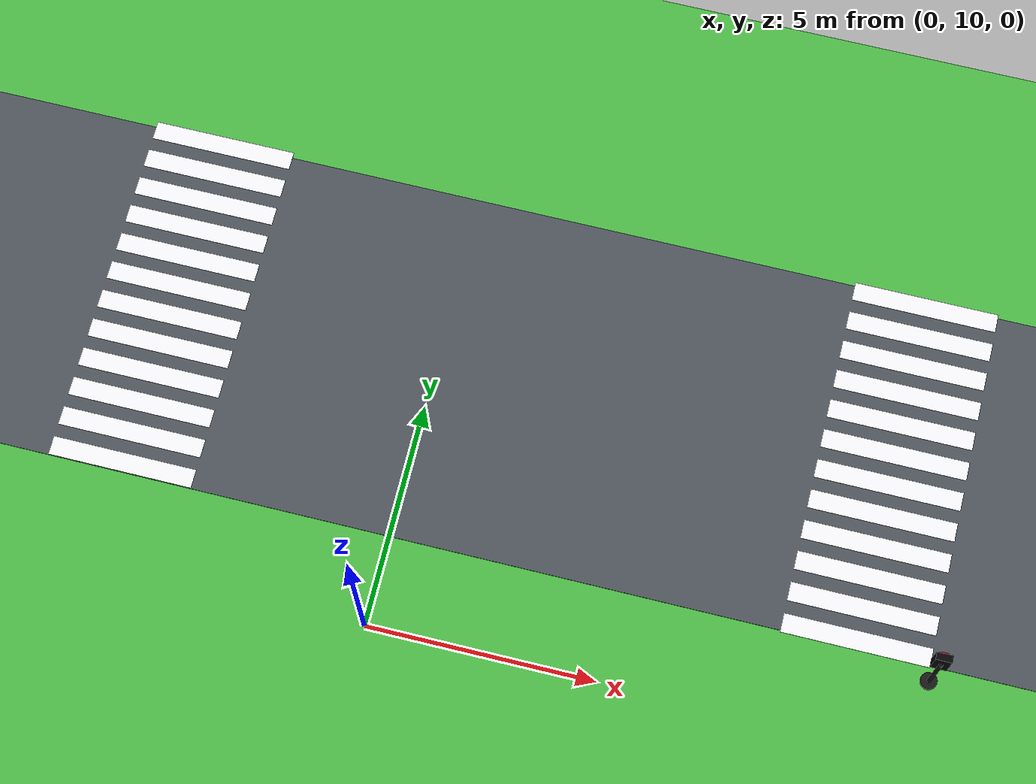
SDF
<sdf version="1.10">
 <world name="city_second">
  <model name="ground_plane">
   <static>true</static>
   <link name="link">
    <collision name="collision">
     <geometry><plane><normal>0 0 1</normal><size>300 300</size></plane></geometry>
    </collision>
    <visual name="visual">
     <geometry><plane><normal>0 0 1</normal><size>300 300</size></plane></geometry>
     <material>
      <ambient>0.280000001 0.689999998 0.25999999 1</ambient>
      <diffuse>0.280000001 0.689999998 0.25999999 1</diffuse>
      <specular>0.0299999993 0.0299999993 0.0299999993 1</specular>
     </material>
    </visual>
    <inertial>
     <mass>1</mass>
     <inertia><ixx>1</ixx><ixy>0</ixy><ixz>0</ixz><iyy>1</iyy><iyz>0</iyz><izz>1</izz></inertia>
    </inertial>
   </link>
  </model>
  <model name="road_h_2">
   <static>true</static>
   <pose>0 16 0.01 0 0 0</pose>
   <link name="link">
    <collision name="collision"><geometry><box><size>84 8 0.02</size></box></geometry></collision>
    <visual name="visual">
     <geometry><box><size>84 8 0.02</size></box></geometry>
     <material>
      <ambient>0.289999992 0.310000002 0.340000004 1</ambient>
      <diffuse>0.289999992 0.310000002 0.340000004 1</diffuse>
      <specular>0.0299999993 0.0299999993 0.0299999993 1</specular>
     </material>
    </visual>
    <inertial>
     <mass>1</mass>
     <inertia><ixx>1</ixx><ixy>0</ixy><ixz>0</ixz><iyy>1</iyy><iyz>0</iyz><izz>1</izz></inertia>
    </inertial>
   </link>
  </model>
  <model name="crosswalk_v_2_1_east_6">
   <static>true</static>
   <pose>10.091699999999999 16.024799999999999 0.017000000000000001 0 0 0</pose>
   <link name="stripe_1">
    <collision name="collision">
     <geometry><box><size>3.2000000000000002 0.41999999999999998 0.01</size></box></geometry>
    </collision>
    <visual name="visual">
     <geometry><box><size>3.2000000000000002 0.41999999999999998 0.01</size></box></geometry>
     <material>
      <ambient>0.920000017 0.920000017 0.930000007 1</ambient>
      <diffuse>0.920000017 0.920000017 0.930000007 1</diffuse>
      <specular>0.0299999993 0.0299999993 0.0299999993 1</specular>
     </material>
    </visual>
    <pose>0 -3.8500000000000001 0 0 0 0</pose>
    <inertial>
     <mass>1</mass>
     <inertia><ixx>1</ixx><ixy>0</ixy><ixz>0</ixz><iyy>1</iyy><iyz>0</iyz><izz>1</izz></inertia>
    </inertial>
   </link>
   <link name="stripe_2">
    <collision name="collision">
     <geometry><box><size>3.2000000000000002 0.41999999999999998 0.01</size></box></geometry>
    </collision>
    <visual name="visual">
     <geometry><box><size>3.2000000000000002 0.41999999999999998 0.01</size></box></geometry>
     <material>
      <ambient>0.920000017 0.920000017 0.930000007 1</ambient>
      <diffuse>0.920000017 0.920000017 0.930000007 1</diffuse>
      <specular>0.0299999993 0.0299999993 0.0299999993 1</specular>
     </material>
    </visual>
    <pose>0 -3.1499999999999999 0 0 0 0</pose>
    <inertial>
     <mass>1</mass>
     <inertia><ixx>1</ixx><ixy>0</ixy><ixz>0</ixz><iyy>1</iyy><iyz>0</iyz><izz>1</izz></inertia>
    </inertial>
   </link>
   <link name="stripe_3">
    <collision name="collision">
     <geometry><box><size>3.2000000000000002 0.41999999999999998 0.01</size></box></geometry>
    </collision>
    <visual name="visual">
     <geometry><box><size>3.2000000000000002 0.41999999999999998 0.01</size></box></geometry>
     <material>
      <ambient>0.920000017 0.920000017 0.930000007 1</ambient>
      <diffuse>0.920000017 0.920000017 0.930000007 1</diffuse>
      <specular>0.0299999993 0.0299999993 0.0299999993 1</specular>
     </material>
    </visual>
    <pose>0 -2.4500000000000002 0 0 0 0</pose>
    <inertial>
     <mass>1</mass>
     <inertia><ixx>1</ixx><ixy>0</ixy><ixz>0</ixz><iyy>1</iyy><iyz>0</iyz><izz>1</izz></inertia>
    </inertial>
   </link>
   <link name="stripe_4">
    <collision name="collision">
     <geometry><box><size>3.2000000000000002 0.41999999999999998 0.01</size></box></geometry>
    </collision>
    <visual name="visual">
     <geometry><box><size>3.2000000000000002 0.41999999999999998 0.01</size></box></geometry>
     <material>
      <ambient>0.920000017 0.920000017 0.930000007 1</ambient>
      <diffuse>0.920000017 0.920000017 0.930000007 1</diffuse>
      <specular>0.0299999993 0.0299999993 0.0299999993 1</specular>
     </material>
    </visual>
    <pose>0 -1.75 0 0 0 0</pose>
    <inertial>
     <mass>1</mass>
     <inertia><ixx>1</ixx><ixy>0</ixy><ixz>0</ixz><iyy>1</iyy><iyz>0</iyz><izz>1</izz></inertia>
    </inertial>
   </link>
   <link name="stripe_5">
    <collision name="collision">
     <geometry><box><size>3.2000000000000002 0.41999999999999998 0.01</size></box></geometry>
    </collision>
    <visual name="visual">
     <geometry><box><size>3.2000000000000002 0.41999999999999998 0.01</size></box></geometry>
     <material>
      <ambient>0.920000017 0.920000017 0.930000007 1</ambient>
      <diffuse>0.920000017 0.920000017 0.930000007 1</diffuse>
      <specular>0.0299999993 0.0299999993 0.0299999993 1</specular>
     </material>
    </visual>
    <pose>0 -1.05 0 0 0 0</pose>
    <inertial>
     <mass>1</mass>
     <inertia><ixx>1</ixx><ixy>0</ixy><ixz>0</ixz><iyy>1</iyy><iyz>0</iyz><izz>1</izz></inertia>
    </inertial>
   </link>
   <link name="stripe_6">
    <collision name="collision">
     <geometry><box><size>3.2000000000000002 0.41999999999999998 0.01</size></box></geometry>
    </collision>
    <visual name="visual">
     <geometry><box><size>3.2000000000000002 0.41999999999999998 0.01</size></box></geometry>
     <material>
      <ambient>0.920000017 0.920000017 0.930000007 1</ambient>
      <diffuse>0.920000017 0.920000017 0.930000007 1</diffuse>
      <specular>0.0299999993 0.0299999993 0.0299999993 1</specular>
     </material>
    </visual>
    <pose>0 -0.34999999999999998 0 0 0 0</pose>
    <inertial>
     <mass>1</mass>
     <inertia><ixx>1</ixx><ixy>0</ixy><ixz>0</ixz><iyy>1</iyy><iyz>0</iyz><izz>1</izz></inertia>
    </inertial>
   </link>
   <link name="stripe_7">
    <collision name="collision">
     <geometry><box><size>3.2000000000000002 0.41999999999999998 0.01</size></box></geometry>
    </collision>
    <visual name="visual">
     <geometry><box><size>3.2000000000000002 0.41999999999999998 0.01</size></box></geometry>
     <material>
      <ambient>0.920000017 0.920000017 0.930000007 1</ambient>
      <diffuse>0.920000017 0.920000017 0.930000007 1</diffuse>
      <specular>0.0299999993 0.0299999993 0.0299999993 1</specular>
     </material>
    </visual>
    <pose>0 0.34999999999999998 0 0 0 0</pose>
    <inertial>
     <mass>1</mass>
     <inertia><ixx>1</ixx><ixy>0</ixy><ixz>0</ixz><iyy>1</iyy><iyz>0</iyz><izz>1</izz></inertia>
    </inertial>
   </link>
   <link name="stripe_8">
    <collision name="collision">
     <geometry><box><size>3.2000000000000002 0.41999999999999998 0.01</size></box></geometry>
    </collision>
    <visual name="visual">
     <geometry><box><size>3.2000000000000002 0.41999999999999998 0.01</size></box></geometry>
     <material>
      <ambient>0.920000017 0.920000017 0.930000007 1</ambient>
      <diffuse>0.920000017 0.920000017 0.930000007 1</diffuse>
      <specular>0.0299999993 0.0299999993 0.0299999993 1</specular>
     </material>
    </visual>
    <pose>0 1.05 0 0 0 0</pose>
    <inertial>
     <mass>1</mass>
     <inertia><ixx>1</ixx><ixy>0</ixy><ixz>0</ixz><iyy>1</iyy><iyz>0</iyz><izz>1</izz></inertia>
    </inertial>
   </link>
   <link name="stripe_9">
    <collision name="collision">
     <geometry><box><size>3.2000000000000002 0.41999999999999998 0.01</size></box></geometry>
    </collision>
    <visual name="visual">
     <geometry><box><size>3.2000000000000002 0.41999999999999998 0.01</size></box></geometry>
     <material>
      <ambient>0.920000017 0.920000017 0.930000007 1</ambient>
      <diffuse>0.920000017 0.920000017 0.930000007 1</diffuse>
      <specular>0.0299999993 0.0299999993 0.0299999993 1</specular>
     </material>
    </visual>
    <pose>0 1.75 0 0 0 0</pose>
    <inertial>
     <mass>1</mass>
     <inertia><ixx>1</ixx><ixy>0</ixy><ixz>0</ixz><iyy>1</iyy><iyz>0</iyz><izz>1</izz></inertia>
    </inertial>
   </link>
   <link name="stripe_10">
    <collision name="collision">
     <geometry><box><size>3.2000000000000002 0.41999999999999998 0.01</size></box></geometry>
    </collision>
    <visual name="visual">
     <geometry><box><size>3.2000000000000002 0.41999999999999998 0.01</size></box></geometry>
     <material>
      <ambient>0.920000017 0.920000017 0.930000007 1</ambient>
      <diffuse>0.920000017 0.920000017 0.930000007 1</diffuse>
      <specular>0.0299999993 0.0299999993 0.0299999993 1</specular>
     </material>
    </visual>
    <pose>0 2.4500000000000002 0 0 0 0</pose>
    <inertial>
     <mass>1</mass>
     <inertia><ixx>1</ixx><ixy>0</ixy><ixz>0</ixz><iyy>1</iyy><iyz>0</iyz><izz>1</izz></inertia>
    </inertial>
   </link>
   <link name="stripe_11">
    <collision name="collision">
     <geometry><box><size>3.2000000000000002 0.41999999999999998 0.01</size></box></geometry>
    </collision>
    <visual name="visual">
     <geometry><box><size>3.2000000000000002 0.41999999999999998 0.01</size></box></geometry>
     <material>
      <ambient>0.920000017 0.920000017 0.930000007 1</ambient>
      <diffuse>0.920000017 0.920000017 0.930000007 1</diffuse>
      <specular>0.0299999993 0.0299999993 0.0299999993 1</specular>
     </material>
    </visual>
    <pose>0 3.1499999999999999 0 0 0 0</pose>
    <inertial>
     <mass>1</mass>
     <inertia><ixx>1</ixx><ixy>0</ixy><ixz>0</ixz><iyy>1</iyy><iyz>0</iyz><izz>1</izz></inertia>
    </inertial>
   </link>
   <link name="stripe_12">
    <collision name="collision">
     <geometry><box><size>3.2000000000000002 0.41999999999999998 0.01</size></box></geometry>
    </collision>
    <visual name="visual">
     <geometry><box><size>3.2000000000000002 0.41999999999999998 0.01</size></box></geometry>
     <material>
      <ambient>0.920000017 0.920000017 0.930000007 1</ambient>
      <diffuse>0.920000017 0.920000017 0.930000007 1</diffuse>
      <specular>0.0299999993 0.0299999993 0.0299999993 1</specular>
     </material>
    </visual>
    <pose>0 3.8500000000000001 0 0 0 0</pose>
    <inertial>
     <mass>1</mass>
     <inertia><ixx>1</ixx><ixy>0</ixy><ixz>0</ixz><iyy>1</iyy><iyz>0</iyz><izz>1</izz></inertia>
    </inertial>
   </link>
  </model>
  <model name="crosswalk_v_2_1_east_5_2">
   <static>true</static>
   <pose>-6.0115999999999996 16.072099999999999 0.017000000000000001 0 0 0</pose>
   <link name="stripe_1">
    <collision name="collision">
     <geometry><box><size>3.2000000000000002 0.41999999999999998 0.01</size></box></geometry>
    </collision>
    <visual name="visual">
     <geometry><box><size>3.2000000000000002 0.41999999999999998 0.01</size></box></geometry>
     <material>
      <ambient>0.920000017 0.920000017 0.930000007 1</ambient>
      <diffuse>0.920000017 0.920000017 0.930000007 1</diffuse>
      <specular>0.0299999993 0.0299999993 0.0299999993 1</specular>
     </material>
    </visual>
    <pose>0 -3.8500000000000001 0 0 0 0</pose>
    <inertial>
     <mass>1</mass>
     <inertia><ixx>1</ixx><ixy>0</ixy><ixz>0</ixz><iyy>1</iyy><iyz>0</iyz><izz>1</izz></inertia>
    </inertial>
   </link>
   <link name="stripe_2">
    <collision name="collision">
     <geometry><box><size>3.2000000000000002 0.41999999999999998 0.01</size></box></geometry>
    </collision>
    <visual name="visual">
     <geometry><box><size>3.2000000000000002 0.41999999999999998 0.01</size></box></geometry>
     <material>
      <ambient>0.920000017 0.920000017 0.930000007 1</ambient>
      <diffuse>0.920000017 0.920000017 0.930000007 1</diffuse>
      <specular>0.0299999993 0.0299999993 0.0299999993 1</specular>
     </material>
    </visual>
    <pose>0 -3.1499999999999999 0 0 0 0</pose>
    <inertial>
     <mass>1</mass>
     <inertia><ixx>1</ixx><ixy>0</ixy><ixz>0</ixz><iyy>1</iyy><iyz>0</iyz><izz>1</izz></inertia>
    </inertial>
   </link>
   <link name="stripe_3">
    <collision name="collision">
     <geometry><box><size>3.2000000000000002 0.41999999999999998 0.01</size></box></geometry>
    </collision>
    <visual name="visual">
     <geometry><box><size>3.2000000000000002 0.41999999999999998 0.01</size></box></geometry>
     <material>
      <ambient>0.920000017 0.920000017 0.930000007 1</ambient>
      <diffuse>0.920000017 0.920000017 0.930000007 1</diffuse>
      <specular>0.0299999993 0.0299999993 0.0299999993 1</specular>
     </material>
    </visual>
    <pose>0 -2.4500000000000002 0 0 0 0</pose>
    <inertial>
     <mass>1</mass>
     <inertia><ixx>1</ixx><ixy>0</ixy><ixz>0</ixz><iyy>1</iyy><iyz>0</iyz><izz>1</izz></inertia>
    </inertial>
   </link>
   <link name="stripe_4">
    <collision name="collision">
     <geometry><box><size>3.2000000000000002 0.41999999999999998 0.01</size></box></geometry>
    </collision>
    <visual name="visual">
     <geometry><box><size>3.2000000000000002 0.41999999999999998 0.01</size></box></geometry>
     <material>
      <ambient>0.920000017 0.920000017 0.930000007 1</ambient>
      <diffuse>0.920000017 0.920000017 0.930000007 1</diffuse>
      <specular>0.0299999993 0.0299999993 0.0299999993 1</specular>
     </material>
    </visual>
    <pose>0 -1.75 0 0 0 0</pose>
    <inertial>
     <mass>1</mass>
     <inertia><ixx>1</ixx><ixy>0</ixy><ixz>0</ixz><iyy>1</iyy><iyz>0</iyz><izz>1</izz></inertia>
    </inertial>
   </link>
   <link name="stripe_5">
    <collision name="collision">
     <geometry><box><size>3.2000000000000002 0.41999999999999998 0.01</size></box></geometry>
    </collision>
    <visual name="visual">
     <geometry><box><size>3.2000000000000002 0.41999999999999998 0.01</size></box></geometry>
     <material>
      <ambient>0.920000017 0.920000017 0.930000007 1</ambient>
      <diffuse>0.920000017 0.920000017 0.930000007 1</diffuse>
      <specular>0.0299999993 0.0299999993 0.0299999993 1</specular>
     </material>
    </visual>
    <pose>0 -1.05 0 0 0 0</pose>
    <inertial>
     <mass>1</mass>
     <inertia><ixx>1</ixx><ixy>0</ixy><ixz>0</ixz><iyy>1</iyy><iyz>0</iyz><izz>1</izz></inertia>
    </inertial>
   </link>
   <link name="stripe_6">
    <collision name="collision">
     <geometry><box><size>3.2000000000000002 0.41999999999999998 0.01</size></box></geometry>
    </collision>
    <visual name="visual">
     <geometry><box><size>3.2000000000000002 0.41999999999999998 0.01</size></box></geometry>
     <material>
      <ambient>0.920000017 0.920000017 0.930000007 1</ambient>
      <diffuse>0.920000017 0.920000017 0.930000007 1</diffuse>
      <specular>0.0299999993 0.0299999993 0.0299999993 1</specular>
     </material>
    </visual>
    <pose>0 -0.34999999999999998 0 0 0 0</pose>
    <inertial>
     <mass>1</mass>
     <inertia><ixx>1</ixx><ixy>0</ixy><ixz>0</ixz><iyy>1</iyy><iyz>0</iyz><izz>1</izz></inertia>
    </inertial>
   </link>
   <link name="stripe_7">
    <collision name="collision">
     <geometry><box><size>3.2000000000000002 0.41999999999999998 0.01</size></box></geometry>
    </collision>
    <visual name="visual">
     <geometry><box><size>3.2000000000000002 0.41999999999999998 0.01</size></box></geometry>
     <material>
      <ambient>0.920000017 0.920000017 0.930000007 1</ambient>
      <diffuse>0.920000017 0.920000017 0.930000007 1</diffuse>
      <specular>0.0299999993 0.0299999993 0.0299999993 1</specular>
     </material>
    </visual>
    <pose>0 0.34999999999999998 0 0 0 0</pose>
    <inertial>
     <mass>1</mass>
     <inertia><ixx>1</ixx><ixy>0</ixy><ixz>0</ixz><iyy>1</iyy><iyz>0</iyz><izz>1</izz></inertia>
    </inertial>
   </link>
   <link name="stripe_8">
    <collision name="collision">
     <geometry><box><size>3.2000000000000002 0.41999999999999998 0.01</size></box></geometry>
    </collision>
    <visual name="visual">
     <geometry><box><size>3.2000000000000002 0.41999999999999998 0.01</size></box></geometry>
     <material>
      <ambient>0.920000017 0.920000017 0.930000007 1</ambient>
      <diffuse>0.920000017 0.920000017 0.930000007 1</diffuse>
      <specular>0.0299999993 0.0299999993 0.0299999993 1</specular>
     </material>
    </visual>
    <pose>0 1.05 0 0 0 0</pose>
    <inertial>
     <mass>1</mass>
     <inertia><ixx>1</ixx><ixy>0</ixy><ixz>0</ixz><iyy>1</iyy><iyz>0</iyz><izz>1</izz></inertia>
    </inertial>
   </link>
   <link name="stripe_9">
    <collision name="collision">
     <geometry><box><size>3.2000000000000002 0.41999999999999998 0.01</size></box></geometry>
    </collision>
    <visual name="visual">
     <geometry><box><size>3.2000000000000002 0.41999999999999998 0.01</size></box></geometry>
     <material>
      <ambient>0.920000017 0.920000017 0.930000007 1</ambient>
      <diffuse>0.920000017 0.920000017 0.930000007 1</diffuse>
      <specular>0.0299999993 0.0299999993 0.0299999993 1</specular>
     </material>
    </visual>
    <pose>0 1.75 0 0 0 0</pose>
    <inertial>
     <mass>1</mass>
     <inertia><ixx>1</ixx><ixy>0</ixy><ixz>0</ixz><iyy>1</iyy><iyz>0</iyz><izz>1</izz></inertia>
    </inertial>
   </link>
   <link name="stripe_10">
    <collision name="collision">
     <geometry><box><size>3.2000000000000002 0.41999999999999998 0.01</size></box></geometry>
    </collision>
    <visual name="visual">
     <geometry><box><size>3.2000000000000002 0.41999999999999998 0.01</size></box></geometry>
     <material>
      <ambient>0.920000017 0.920000017 0.930000007 1</ambient>
      <diffuse>0.920000017 0.920000017 0.930000007 1</diffuse>
      <specular>0.0299999993 0.0299999993 0.0299999993 1</specular>
     </material>
    </visual>
    <pose>0 2.4500000000000002 0 0 0 0</pose>
    <inertial>
     <mass>1</mass>
     <inertia><ixx>1</ixx><ixy>0</ixy><ixz>0</ixz><iyy>1</iyy><iyz>0</iyz><izz>1</izz></inertia>
    </inertial>
   </link>
   <link name="stripe_11">
    <collision name="collision">
     <geometry><box><size>3.2000000000000002 0.41999999999999998 0.01</size></box></geometry>
    </collision>
    <visual name="visual">
     <geometry><box><size>3.2000000000000002 0.41999999999999998 0.01</size></box></geometry>
     <material>
      <ambient>0.920000017 0.920000017 0.930000007 1</ambient>
      <diffuse>0.920000017 0.920000017 0.930000007 1</diffuse>
      <specular>0.0299999993 0.0299999993 0.0299999993 1</specular>
     </material>
    </visual>
    <pose>0 3.1499999999999999 0 0 0 0</pose>
    <inertial>
     <mass>1</mass>
     <inertia><ixx>1</ixx><ixy>0</ixy><ixz>0</ixz><iyy>1</iyy><iyz>0</iyz><izz>1</izz></inertia>
    </inertial>
   </link>
   <link name="stripe_12">
    <collision name="collision">
     <geometry><box><size>3.2000000000000002 0.41999999999999998 0.01</size></box></geometry>
    </collision>
    <visual name="visual">
     <geometry><box><size>3.2000000000000002 0.41999999999999998 0.01</size></box></geometry>
     <material>
      <ambient>0.920000017 0.920000017 0.930000007 1</ambient>
      <diffuse>0.920000017 0.920000017 0.930000007 1</diffuse>
      <specular>0.0299999993 0.0299999993 0.0299999993 1</specular>
     </material>
    </visual>
    <pose>0 3.8500000000000001 0 0 0 0</pose>
    <inertial>
     <mass>1</mass>
     <inertia><ixx>1</ixx><ixy>0</ixy><ixz>0</ixz><iyy>1</iyy><iyz>0</iyz><izz>1</izz></inertia>
    </inertial>
   </link>
  </model>
  <model name="simple_traffic_light_red_north_2">
   <static>true</static>
   <pose>11.708740095335536 11.674688214312628 0 0 0 0</pose>
   <link name="base">
    <pose>0 0 0.040000000000000001 0 0 0</pose>
    <collision name="collision">
     <geometry>
      <cylinder><radius>0.17999999999999999</radius><length>0.080000000000000002</length></cylinder>
     </geometry>
    </collision>
    <visual name="visual">
     <geometry>
      <cylinder><radius>0.17999999999999999</radius><length>0.080000000000000002</length></cylinder>
     </geometry>
     <material>
      <ambient>0.0799999982 0.0799999982 0.0799999982 1</ambient>
      <diffuse>0.0799999982 0.0799999982 0.0799999982 1</diffuse>
      <specular>0.150000006 0.150000006 0.150000006 1</specular>
      <emissive>0 0 0 1</emissive>
     </material>
    </visual>
    <inertial>
     <mass>1</mass>
     <inertia><ixx>1</ixx><ixy>0</ixy><ixz>0</ixz><iyy>1</iyy><iyz>0</iyz><izz>1</izz></inertia>
    </inertial>
   </link>
   <link name="pole">
    <pose>0 0 0.80000000000000004 0 0 0</pose>
    <collision name="collision">
     <geometry>
      <cylinder><radius>0.044999999999999998</radius><length>1.6000000000000001</length></cylinder>
     </geometry>
    </collision>
    <visual name="visual">
     <geometry>
      <cylinder><radius>0.044999999999999998</radius><length>1.6000000000000001</length></cylinder>
     </geometry>
     <material>
      <ambient>0.0799999982 0.0799999982 0.0799999982 1</ambient>
      <diffuse>0.0799999982 0.0799999982 0.0799999982 1</diffuse>
      <specular>0.150000006 0.150000006 0.150000006 1</specular>
      <emissive>0 0 0 1</emissive>
     </material>
    </visual>
    <inertial>
     <mass>1</mass>
     <inertia><ixx>1</ixx><ixy>0</ixy><ixz>0</ixz><iyy>1</iyy><iyz>0</iyz><izz>1</izz></inertia>
    </inertial>
   </link>
   <link name="signal_box">
    <pose>0 0.090000000000003411 1.55 0 0 0</pose>
    <collision name="collision">
     <geometry><box><size>0.34000000000000002 0.16 0.71999999999999997</size></box></geometry>
    </collision>
    <visual name="visual">
     <geometry><box><size>0.34000000000000002 0.16 0.71999999999999997</size></box></geometry>
     <material>
      <ambient>0.0199999996 0.0199999996 0.0199999996 1</ambient>
      <diffuse>0.0199999996 0.0199999996 0.0199999996 1</diffuse>
      <specular>0.150000006 0.150000006 0.150000006 1</specular>
      <emissive>0 0 0 1</emissive>
     </material>
    </visual>
    <inertial>
     <mass>1</mass>
     <inertia><ixx>1</ixx><ixy>0</ixy><ixz>0</ixz><iyy>1</iyy><iyz>0</iyz><izz>1</izz></inertia>
    </inertial>
   </link>
   <link name="red_lens">
    <pose>0 0.18099999999999739 1.78 1.5707963268000003 0 0</pose>
    <collision name="collision">
     <geometry><cylinder><radius>0.105</radius><length>0.035000000000000003</length></cylinder></geometry>
    </collision>
    <visual name="visual">
     <geometry><cylinder><radius>0.105</radius><length>0.035000000000000003</length></cylinder></geometry>
     <material>
      <ambient>1 0.0199999996 0.0199999996 1</ambient>
      <diffuse>1 0.0199999996 0.0199999996 1</diffuse>
      <specular>0.150000006 0.150000006 0.150000006 1</specular>
      <emissive>1 0.0199999996 0.0199999996 1</emissive>
     </material>
    </visual>
    <inertial>
     <mass>1</mass>
     <inertia><ixx>1</ixx><ixy>0</ixy><ixz>0</ixz><iyy>1</iyy><iyz>0</iyz><izz>1</izz></inertia>
    </inertial>
   </link>
   <link name="yellow_lens">
    <pose>0 0.18200000000000216 1.55 1.5707963268000003 0 0</pose>
    <collision name="collision">
     <geometry>
      <cylinder><radius>0.095000000000000001</radius><length>0.035000000000000003</length></cylinder>
     </geometry>
    </collision>
    <visual name="visual">
     <geometry>
      <cylinder><radius>0.095000000000000001</radius><length>0.035000000000000003</length></cylinder>
     </geometry>
     <material>
      <ambient>0.119999997 0.100000001 0.0199999996 1</ambient>
      <diffuse>0.119999997 0.100000001 0.0199999996 1</diffuse>
      <specular>0.150000006 0.150000006 0.150000006 1</specular>
      <emissive>0 0 0 1</emissive>
     </material>
    </visual>
    <inertial>
     <mass>1</mass>
     <inertia><ixx>1</ixx><ixy>0</ixy><ixz>0</ixz><iyy>1</iyy><iyz>0</iyz><izz>1</izz></inertia>
    </inertial>
   </link>
   <link name="green_lens">
    <pose>0 0.18299999999999983 1.3200000000000001 1.5707963268000003 0 0</pose>
    <collision name="collision">
     <geometry><cylinder><radius>0.105</radius><length>0.035000000000000003</length></cylinder></geometry>
    </collision>
    <visual name="visual">
     <geometry><cylinder><radius>0.105</radius><length>0.035000000000000003</length></cylinder></geometry>
     <material>
      <ambient>0.0799999982 0.0799999982 0.0799999982 1</ambient>
      <diffuse>0.0799999982 0.0799999982 0.0799999982 1</diffuse>
      <specular>0.150000006 0.150000006 0.150000006 1</specular>
      <emissive>0 0 0 1</emissive>
     </material>
    </visual>
    <inertial>
     <mass>1</mass>
     <inertia><ixx>1</ixx><ixy>0</ixy><ixz>0</ixz><iyy>1</iyy><iyz>0</iyz><izz>1</izz></inertia>
    </inertial>
   </link>
   <light name="red_glow" type="point">
    <pose>0 0.28 1.78 0 0 0</pose>
    <diffuse>1 0.02 0.02 1</diffuse>
    <specular>1 0.02 0.02 1</specular>
    <attenuation>
     <range>3.0</range>
     <constant>0.8</constant>
     <linear>0.15</linear>
     <quadratic>0.02</quadratic>
    </attenuation>
    <cast_shadows>false</cast_shadows>
   </light>
  </model>
 </world>
</sdf>
